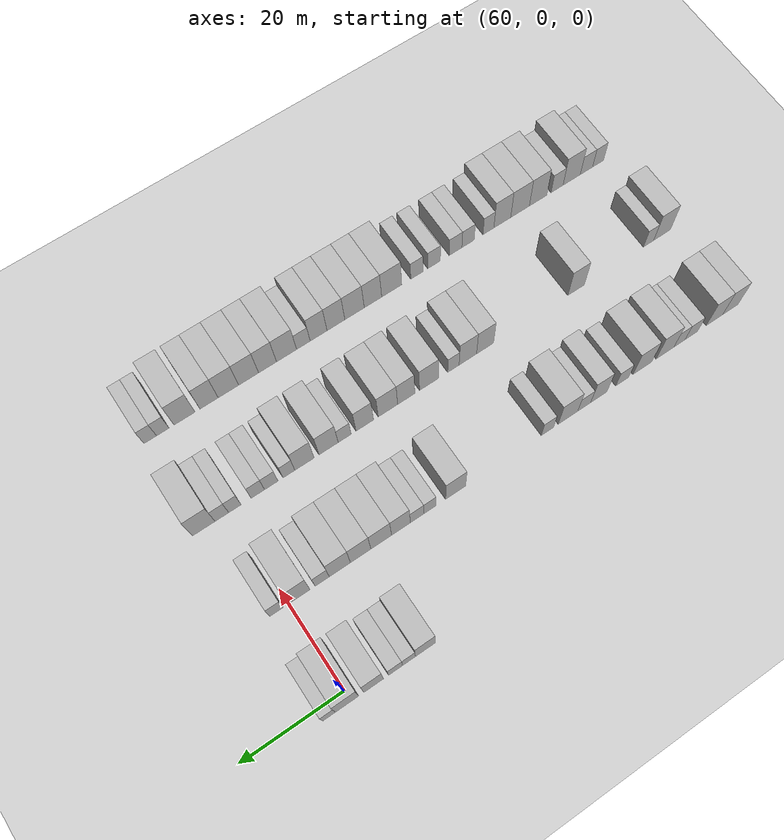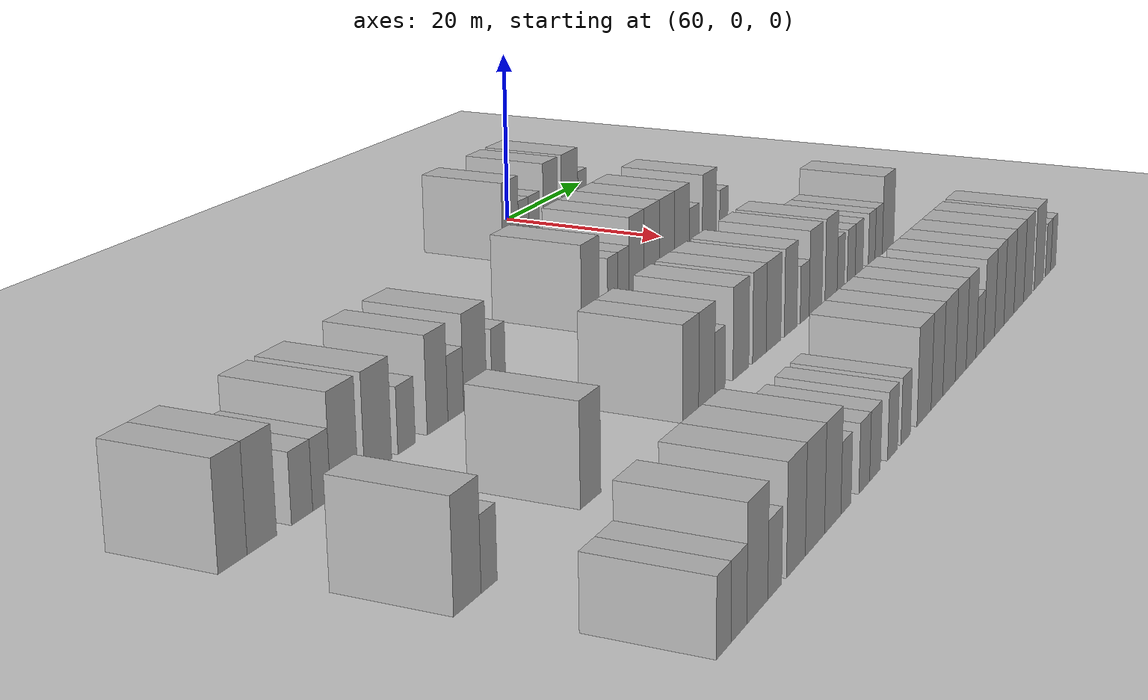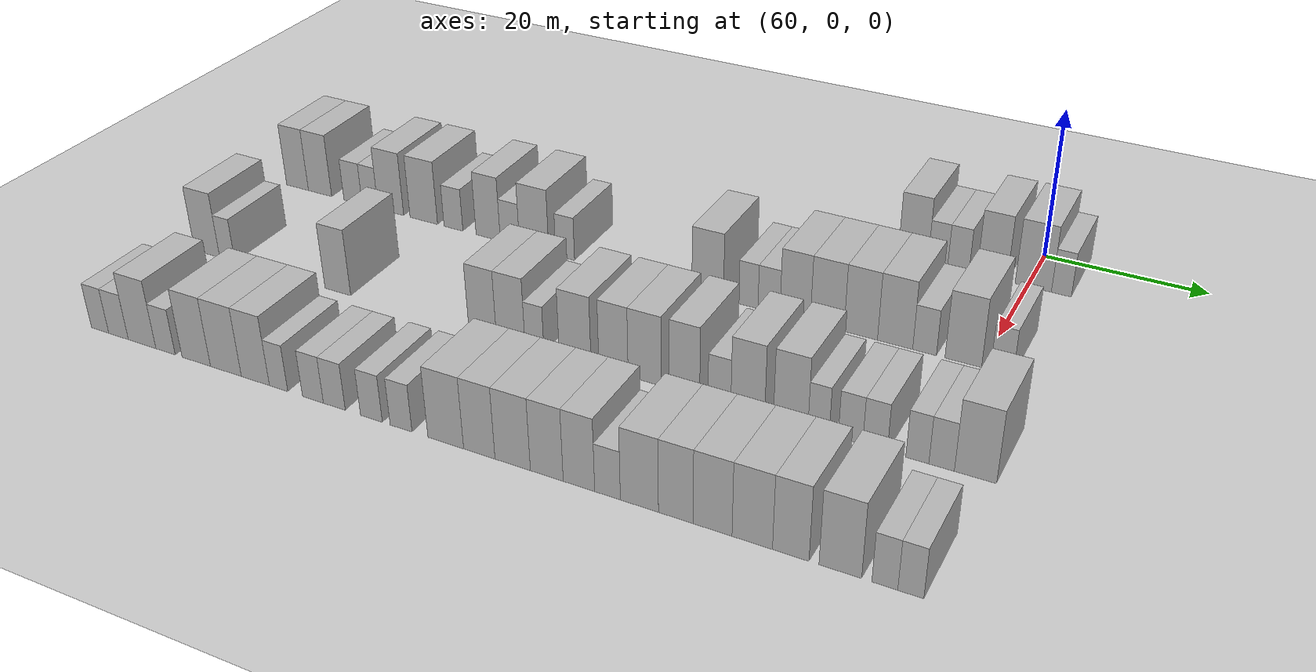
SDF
<sdf version="1.6">
 <world name="default">
  <include>
   <name>ground_plane_2</name>
   <uri>model://HANNAS_ground_plane</uri>
   <pose>100 0 0  0 0 0</pose>
  </include>
  <model name="building_426">
   <static>1</static>
   <pose>63.0000 -14.4906 0 0.000000 0.000000 0.000000</pose>
   <link name="link">
    <pose>0 0 4.50 0 0 0</pose>
    <collision name="collision"><geometry><box><size>10.0000 3.8891 9.0000</size></box></geometry></collision>
    <visual name="visual">
     <cast_shadows>0</cast_shadows>
     <geometry><box><size>10.0000 3.8891 9.0000</size></box></geometry>
     <material>
      <script>
       <uri>model://HANNAS_wall/materials/scripts</uri>
       <uri>model://HANNAS_wall/materials/textures</uri>
       <name>vrc/HANNAS_wall</name>
      </script>
     </material>
    </visual>
   </link>
  </model>
  <model name="building_427">
   <static>1</static>
   <pose>63.0000 -11.2849 0 0.000000 0.000000 0.000000</pose>
   <link name="link">
    <pose>0 0 3.00 0 0 0</pose>
    <collision name="collision"><geometry><box><size>10.0000 2.5223 6.0000</size></box></geometry></collision>
    <visual name="visual">
     <cast_shadows>0</cast_shadows>
     <geometry><box><size>10.0000 2.5223 6.0000</size></box></geometry>
     <material>
      <script>
       <uri>model://HANNAS_wall/materials/scripts</uri>
       <uri>model://HANNAS_wall/materials/textures</uri>
       <name>vrc/HANNAS_wall</name>
      </script>
     </material>
    </visual>
   </link>
  </model>
  <model name="building_428">
   <static>1</static>
   <pose>63.0000 -8.6567 0 0.000000 0.000000 0.000000</pose>
   <link name="link">
    <pose>0 0 3.00 0 0 0</pose>
    <collision name="collision"><geometry><box><size>10.0000 2.7342 6.0000</size></box></geometry></collision>
    <visual name="visual">
     <cast_shadows>0</cast_shadows>
     <geometry><box><size>10.0000 2.7342 6.0000</size></box></geometry>
     <material>
      <script>
       <uri>model://HANNAS_wall/materials/scripts</uri>
       <uri>model://HANNAS_wall/materials/textures</uri>
       <name>vrc/HANNAS_wall</name>
      </script>
     </material>
    </visual>
   </link>
  </model>
  <model name="building_429">
   <static>1</static>
   <pose>63.0000 -4.4032 0 0.000000 0.000000 0.000000</pose>
   <link name="link">
    <pose>0 0 4.50 0 0 0</pose>
    <collision name="collision"><geometry><box><size>10.0000 3.7728 9.0000</size></box></geometry></collision>
    <visual name="visual">
     <cast_shadows>0</cast_shadows>
     <geometry><box><size>10.0000 3.7728 9.0000</size></box></geometry>
     <material>
      <script>
       <uri>model://HANNAS_wall/materials/scripts</uri>
       <uri>model://HANNAS_wall/materials/textures</uri>
       <name>vrc/HANNAS_wall</name>
      </script>
     </material>
    </visual>
   </link>
  </model>
  <model name="building_430">
   <static>1</static>
   <pose>63.0000 0.7044 0 0.000000 0.000000 0.000000</pose>
   <link name="link">
    <pose>0 0 4.50 0 0 0</pose>
    <collision name="collision"><geometry><box><size>10.0000 4.4423 9.0000</size></box></geometry></collision>
    <visual name="visual">
     <cast_shadows>0</cast_shadows>
     <geometry><box><size>10.0000 4.4423 9.0000</size></box></geometry>
     <material>
      <script>
       <uri>model://HANNAS_wall/materials/scripts</uri>
       <uri>model://HANNAS_wall/materials/textures</uri>
       <name>vrc/HANNAS_wall</name>
      </script>
     </material>
    </visual>
   </link>
  </model>
  <model name="building_431">
   <static>1</static>
   <pose>63.0000 4.1381 0 0.000000 0.000000 0.000000</pose>
   <link name="link">
    <pose>0 0 3.00 0 0 0</pose>
    <collision name="collision"><geometry><box><size>10.0000 2.4251 6.0000</size></box></geometry></collision>
    <visual name="visual">
     <cast_shadows>0</cast_shadows>
     <geometry><box><size>10.0000 2.4251 6.0000</size></box></geometry>
     <material>
      <script>
       <uri>model://HANNAS_wall/materials/scripts</uri>
       <uri>model://HANNAS_wall/materials/textures</uri>
       <name>vrc/HANNAS_wall</name>
      </script>
     </material>
    </visual>
   </link>
  </model>
  <model name="building_577">
   <static>1</static>
   <pose>82.0000 -94.7768 0 0.000000 0.000000 0.000000</pose>
   <link name="link">
    <pose>0 0 4.50 0 0 0</pose>
    <collision name="collision"><geometry><box><size>10.0000 3.6217 9.0000</size></box></geometry></collision>
    <visual name="visual">
     <cast_shadows>0</cast_shadows>
     <geometry><box><size>10.0000 3.6217 9.0000</size></box></geometry>
     <material>
      <script>
       <uri>model://HANNAS_wall/materials/scripts</uri>
       <uri>model://HANNAS_wall/materials/textures</uri>
       <name>vrc/HANNAS_wall</name>
      </script>
     </material>
    </visual>
   </link>
  </model>
  <model name="building_578">
   <static>1</static>
   <pose>82.0000 -91.0421 0 0.000000 0.000000 0.000000</pose>
   <link name="link">
    <pose>0 0 4.50 0 0 0</pose>
    <collision name="collision"><geometry><box><size>10.0000 3.8477 9.0000</size></box></geometry></collision>
    <visual name="visual">
     <cast_shadows>0</cast_shadows>
     <geometry><box><size>10.0000 3.8477 9.0000</size></box></geometry>
     <material>
      <script>
       <uri>model://HANNAS_wall/materials/scripts</uri>
       <uri>model://HANNAS_wall/materials/textures</uri>
       <name>vrc/HANNAS_wall</name>
      </script>
     </material>
    </visual>
   </link>
  </model>
  <model name="building_579">
   <static>1</static>
   <pose>82.0000 -85.6497 0 0.000000 0.000000 0.000000</pose>
   <link name="link">
    <pose>0 0 3.00 0 0 0</pose>
    <collision name="collision"><geometry><box><size>10.0000 2.9372 6.0000</size></box></geometry></collision>
    <visual name="visual">
     <cast_shadows>0</cast_shadows>
     <geometry><box><size>10.0000 2.9372 6.0000</size></box></geometry>
     <material>
      <script>
       <uri>model://HANNAS_wall/materials/scripts</uri>
       <uri>model://HANNAS_wall/materials/textures</uri>
       <name>vrc/HANNAS_wall</name>
      </script>
     </material>
    </visual>
   </link>
  </model>
  <model name="building_580">
   <static>1</static>
   <pose>82.0000 -82.9049 0 0.000000 0.000000 0.000000</pose>
   <link name="link">
    <pose>0 0 3.00 0 0 0</pose>
    <collision name="collision"><geometry><box><size>10.0000 2.5524 6.0000</size></box></geometry></collision>
    <visual name="visual">
     <cast_shadows>0</cast_shadows>
     <geometry><box><size>10.0000 2.5524 6.0000</size></box></geometry>
     <material>
      <script>
       <uri>model://HANNAS_wall/materials/scripts</uri>
       <uri>model://HANNAS_wall/materials/textures</uri>
       <name>vrc/HANNAS_wall</name>
      </script>
     </material>
    </visual>
   </link>
  </model>
  <model name="building_581">
   <static>1</static>
   <pose>82.0000 -79.5986 0 0.000000 0.000000 0.000000</pose>
   <link name="link">
    <pose>0 0 4.50 0 0 0</pose>
    <collision name="collision"><geometry><box><size>10.0000 4.0602 9.0000</size></box></geometry></collision>
    <visual name="visual">
     <cast_shadows>0</cast_shadows>
     <geometry><box><size>10.0000 4.0602 9.0000</size></box></geometry>
     <material>
      <script>
       <uri>model://HANNAS_wall/materials/scripts</uri>
       <uri>model://HANNAS_wall/materials/textures</uri>
       <name>vrc/HANNAS_wall</name>
      </script>
     </material>
    </visual>
   </link>
  </model>
  <model name="building_582">
   <static>1</static>
   <pose>82.0000 -74.4341 0 0.000000 0.000000 0.000000</pose>
   <link name="link">
    <pose>0 0 4.50 0 0 0</pose>
    <collision name="collision"><geometry><box><size>10.0000 4.2687 9.0000</size></box></geometry></collision>
    <visual name="visual">
     <cast_shadows>0</cast_shadows>
     <geometry><box><size>10.0000 4.2687 9.0000</size></box></geometry>
     <material>
      <script>
       <uri>model://HANNAS_wall/materials/scripts</uri>
       <uri>model://HANNAS_wall/materials/textures</uri>
       <name>vrc/HANNAS_wall</name>
      </script>
     </material>
    </visual>
   </link>
  </model>
  <model name="building_583">
   <static>1</static>
   <pose>82.0000 -69.8637 0 0.000000 0.000000 0.000000</pose>
   <link name="link">
    <pose>0 0 3.00 0 0 0</pose>
    <collision name="collision"><geometry><box><size>10.0000 2.8721 6.0000</size></box></geometry></collision>
    <visual name="visual">
     <cast_shadows>0</cast_shadows>
     <geometry><box><size>10.0000 2.8721 6.0000</size></box></geometry>
     <material>
      <script>
       <uri>model://HANNAS_wall/materials/scripts</uri>
       <uri>model://HANNAS_wall/materials/textures</uri>
       <name>vrc/HANNAS_wall</name>
      </script>
     </material>
    </visual>
   </link>
  </model>
  <model name="building_584">
   <static>1</static>
   <pose>82.0000 -64.6179 0 0.000000 0.000000 0.000000</pose>
   <link name="link">
    <pose>0 0 4.50 0 0 0</pose>
    <collision name="collision"><geometry><box><size>10.0000 3.6196 9.0000</size></box></geometry></collision>
    <visual name="visual">
     <cast_shadows>0</cast_shadows>
     <geometry><box><size>10.0000 3.6196 9.0000</size></box></geometry>
     <material>
      <script>
       <uri>model://HANNAS_wall/materials/scripts</uri>
       <uri>model://HANNAS_wall/materials/textures</uri>
       <name>vrc/HANNAS_wall</name>
      </script>
     </material>
    </visual>
   </link>
  </model>
  <model name="building_585">
   <static>1</static>
   <pose>82.0000 -61.3873 0 0.000000 0.000000 0.000000</pose>
   <link name="link">
    <pose>0 0 3.00 0 0 0</pose>
    <collision name="collision"><geometry><box><size>10.0000 2.8418 6.0000</size></box></geometry></collision>
    <visual name="visual">
     <cast_shadows>0</cast_shadows>
     <geometry><box><size>10.0000 2.8418 6.0000</size></box></geometry>
     <material>
      <script>
       <uri>model://HANNAS_wall/materials/scripts</uri>
       <uri>model://HANNAS_wall/materials/textures</uri>
       <name>vrc/HANNAS_wall</name>
      </script>
     </material>
    </visual>
   </link>
  </model>
  <model name="building_586">
   <static>1</static>
   <pose>82.0000 -57.8282 0 0.000000 0.000000 0.000000</pose>
   <link name="link">
    <pose>0 0 4.50 0 0 0</pose>
    <collision name="collision"><geometry><box><size>10.0000 4.2763 9.0000</size></box></geometry></collision>
    <visual name="visual">
     <cast_shadows>0</cast_shadows>
     <geometry><box><size>10.0000 4.2763 9.0000</size></box></geometry>
     <material>
      <script>
       <uri>model://HANNAS_wall/materials/scripts</uri>
       <uri>model://HANNAS_wall/materials/textures</uri>
       <name>vrc/HANNAS_wall</name>
      </script>
     </material>
    </visual>
   </link>
  </model>
  <model name="building_587">
   <static>1</static>
   <pose>82.0000 -53.3490 0 0.000000 0.000000 0.000000</pose>
   <link name="link">
    <pose>0 0 3.00 0 0 0</pose>
    <collision name="collision"><geometry><box><size>10.0000 2.6821 6.0000</size></box></geometry></collision>
    <visual name="visual">
     <cast_shadows>0</cast_shadows>
     <geometry><box><size>10.0000 2.6821 6.0000</size></box></geometry>
     <material>
      <script>
       <uri>model://HANNAS_wall/materials/scripts</uri>
       <uri>model://HANNAS_wall/materials/textures</uri>
       <name>vrc/HANNAS_wall</name>
      </script>
     </material>
    </visual>
   </link>
  </model>
  <model name="building_588">
   <static>1</static>
   <pose>82.0000 -33.7430 0 0.000000 0.000000 0.000000</pose>
   <link name="link">
    <pose>0 0 4.50 0 0 0</pose>
    <collision name="collision"><geometry><box><size>10.0000 4.1766 9.0000</size></box></geometry></collision>
    <visual name="visual">
     <cast_shadows>0</cast_shadows>
     <geometry><box><size>10.0000 4.1766 9.0000</size></box></geometry>
     <material>
      <script>
       <uri>model://HANNAS_wall/materials/scripts</uri>
       <uri>model://HANNAS_wall/materials/textures</uri>
       <name>vrc/HANNAS_wall</name>
      </script>
     </material>
    </visual>
   </link>
  </model>
  <model name="building_589">
   <static>1</static>
   <pose>82.0000 -28.4143 0 0.000000 0.000000 0.000000</pose>
   <link name="link">
    <pose>0 0 3.00 0 0 0</pose>
    <collision name="collision"><geometry><box><size>10.0000 2.4808 6.0000</size></box></geometry></collision>
    <visual name="visual">
     <cast_shadows>0</cast_shadows>
     <geometry><box><size>10.0000 2.4808 6.0000</size></box></geometry>
     <material>
      <script>
       <uri>model://HANNAS_wall/materials/scripts</uri>
       <uri>model://HANNAS_wall/materials/textures</uri>
       <name>vrc/HANNAS_wall</name>
      </script>
     </material>
    </visual>
   </link>
  </model>
  <model name="building_590">
   <static>1</static>
   <pose>82.0000 -25.7703 0 0.000000 0.000000 0.000000</pose>
   <link name="link">
    <pose>0 0 3.00 0 0 0</pose>
    <collision name="collision"><geometry><box><size>10.0000 2.8072 6.0000</size></box></geometry></collision>
    <visual name="visual">
     <cast_shadows>0</cast_shadows>
     <geometry><box><size>10.0000 2.8072 6.0000</size></box></geometry>
     <material>
      <script>
       <uri>model://HANNAS_wall/materials/scripts</uri>
       <uri>model://HANNAS_wall/materials/textures</uri>
       <name>vrc/HANNAS_wall</name>
      </script>
     </material>
    </visual>
   </link>
  </model>
  <model name="building_591">
   <static>1</static>
   <pose>82.0000 -22.4436 0 0.000000 0.000000 0.000000</pose>
   <link name="link">
    <pose>0 0 4.50 0 0 0</pose>
    <collision name="collision"><geometry><box><size>10.0000 3.8463 9.0000</size></box></geometry></collision>
    <visual name="visual">
     <cast_shadows>0</cast_shadows>
     <geometry><box><size>10.0000 3.8463 9.0000</size></box></geometry>
     <material>
      <script>
       <uri>model://HANNAS_wall/materials/scripts</uri>
       <uri>model://HANNAS_wall/materials/textures</uri>
       <name>vrc/HANNAS_wall</name>
      </script>
     </material>
    </visual>
   </link>
  </model>
  <model name="building_592">
   <static>1</static>
   <pose>82.0000 -18.4230 0 0.000000 0.000000 0.000000</pose>
   <link name="link">
    <pose>0 0 4.50 0 0 0</pose>
    <collision name="collision"><geometry><box><size>10.0000 4.1948 9.0000</size></box></geometry></collision>
    <visual name="visual">
     <cast_shadows>0</cast_shadows>
     <geometry><box><size>10.0000 4.1948 9.0000</size></box></geometry>
     <material>
      <script>
       <uri>model://HANNAS_wall/materials/scripts</uri>
       <uri>model://HANNAS_wall/materials/textures</uri>
       <name>vrc/HANNAS_wall</name>
      </script>
     </material>
    </visual>
   </link>
  </model>
  <model name="building_593">
   <static>1</static>
   <pose>82.0000 -14.2781 0 0.000000 0.000000 0.000000</pose>
   <link name="link">
    <pose>0 0 4.50 0 0 0</pose>
    <collision name="collision"><geometry><box><size>10.0000 4.0950 9.0000</size></box></geometry></collision>
    <visual name="visual">
     <cast_shadows>0</cast_shadows>
     <geometry><box><size>10.0000 4.0950 9.0000</size></box></geometry>
     <material>
      <script>
       <uri>model://HANNAS_wall/materials/scripts</uri>
       <uri>model://HANNAS_wall/materials/textures</uri>
       <name>vrc/HANNAS_wall</name>
      </script>
     </material>
    </visual>
   </link>
  </model>
  <model name="building_594">
   <static>1</static>
   <pose>82.0000 -10.1192 0 0.000000 0.000000 0.000000</pose>
   <link name="link">
    <pose>0 0 4.50 0 0 0</pose>
    <collision name="collision"><geometry><box><size>10.0000 4.2227 9.0000</size></box></geometry></collision>
    <visual name="visual">
     <cast_shadows>0</cast_shadows>
     <geometry><box><size>10.0000 4.2227 9.0000</size></box></geometry>
     <material>
      <script>
       <uri>model://HANNAS_wall/materials/scripts</uri>
       <uri>model://HANNAS_wall/materials/textures</uri>
       <name>vrc/HANNAS_wall</name>
      </script>
     </material>
    </visual>
   </link>
  </model>
  <model name="building_595">
   <static>1</static>
   <pose>82.0000 -6.6034 0 0.000000 0.000000 0.000000</pose>
   <link name="link">
    <pose>0 0 3.00 0 0 0</pose>
    <collision name="collision"><geometry><box><size>10.0000 2.8090 6.0000</size></box></geometry></collision>
    <visual name="visual">
     <cast_shadows>0</cast_shadows>
     <geometry><box><size>10.0000 2.8090 6.0000</size></box></geometry>
     <material>
      <script>
       <uri>model://HANNAS_wall/materials/scripts</uri>
       <uri>model://HANNAS_wall/materials/textures</uri>
       <name>vrc/HANNAS_wall</name>
      </script>
     </material>
    </visual>
   </link>
  </model>
  <model name="building_596">
   <static>1</static>
   <pose>82.0000 -2.0756 0 0.000000 0.000000 0.000000</pose>
   <link name="link">
    <pose>0 0 4.50 0 0 0</pose>
    <collision name="collision"><geometry><box><size>10.0000 4.2466 9.0000</size></box></geometry></collision>
    <visual name="visual">
     <cast_shadows>0</cast_shadows>
     <geometry><box><size>10.0000 4.2466 9.0000</size></box></geometry>
     <material>
      <script>
       <uri>model://HANNAS_wall/materials/scripts</uri>
       <uri>model://HANNAS_wall/materials/textures</uri>
       <name>vrc/HANNAS_wall</name>
      </script>
     </material>
    </visual>
   </link>
  </model>
  <model name="building_597">
   <static>1</static>
   <pose>82.0000 2.3453 0 0.000000 0.000000 0.000000</pose>
   <link name="link">
    <pose>0 0 3.00 0 0 0</pose>
    <collision name="collision"><geometry><box><size>10.0000 2.5951 6.0000</size></box></geometry></collision>
    <visual name="visual">
     <cast_shadows>0</cast_shadows>
     <geometry><box><size>10.0000 2.5951 6.0000</size></box></geometry>
     <material>
      <script>
       <uri>model://HANNAS_wall/materials/scripts</uri>
       <uri>model://HANNAS_wall/materials/textures</uri>
       <name>vrc/HANNAS_wall</name>
      </script>
     </material>
    </visual>
   </link>
  </model>
  <model name="building_733">
   <static>1</static>
   <pose>101.0000 -93.9595 0 0.000000 0.000000 0.000000</pose>
   <link name="link">
    <pose>0 0 4.50 0 0 0</pose>
    <collision name="collision"><geometry><box><size>10.0000 3.9948 9.0000</size></box></geometry></collision>
    <visual name="visual">
     <cast_shadows>0</cast_shadows>
     <geometry><box><size>10.0000 3.9948 9.0000</size></box></geometry>
     <material>
      <script>
       <uri>model://HANNAS_wall/materials/scripts</uri>
       <uri>model://HANNAS_wall/materials/textures</uri>
       <name>vrc/HANNAS_wall</name>
      </script>
     </material>
    </visual>
   </link>
  </model>
  <model name="building_734">
   <static>1</static>
   <pose>101.0000 -90.7580 0 0.000000 0.000000 0.000000</pose>
   <link name="link">
    <pose>0 0 3.00 0 0 0</pose>
    <collision name="collision"><geometry><box><size>10.0000 2.4082 6.0000</size></box></geometry></collision>
    <visual name="visual">
     <cast_shadows>0</cast_shadows>
     <geometry><box><size>10.0000 2.4082 6.0000</size></box></geometry>
     <material>
      <script>
       <uri>model://HANNAS_wall/materials/scripts</uri>
       <uri>model://HANNAS_wall/materials/textures</uri>
       <name>vrc/HANNAS_wall</name>
      </script>
     </material>
    </visual>
   </link>
  </model>
  <model name="building_735">
   <static>1</static>
   <pose>101.0000 -73.8840 0 0.000000 0.000000 0.000000</pose>
   <link name="link">
    <pose>0 0 4.50 0 0 0</pose>
    <collision name="collision"><geometry><box><size>10.0000 3.7799 9.0000</size></box></geometry></collision>
    <visual name="visual">
     <cast_shadows>0</cast_shadows>
     <geometry><box><size>10.0000 3.7799 9.0000</size></box></geometry>
     <material>
      <script>
       <uri>model://HANNAS_wall/materials/scripts</uri>
       <uri>model://HANNAS_wall/materials/textures</uri>
       <name>vrc/HANNAS_wall</name>
      </script>
     </material>
    </visual>
   </link>
  </model>
  <model name="building_736">
   <static>1</static>
   <pose>101.0000 -53.3920 0 0.000000 0.000000 0.000000</pose>
   <link name="link">
    <pose>0 0 4.50 0 0 0</pose>
    <collision name="collision"><geometry><box><size>10.0000 3.7347 9.0000</size></box></geometry></collision>
    <visual name="visual">
     <cast_shadows>0</cast_shadows>
     <geometry><box><size>10.0000 3.7347 9.0000</size></box></geometry>
     <material>
      <script>
       <uri>model://HANNAS_wall/materials/scripts</uri>
       <uri>model://HANNAS_wall/materials/textures</uri>
       <name>vrc/HANNAS_wall</name>
      </script>
     </material>
    </visual>
   </link>
  </model>
  <model name="building_737">
   <static>1</static>
   <pose>101.0000 -49.6116 0 0.000000 0.000000 0.000000</pose>
   <link name="link">
    <pose>0 0 4.50 0 0 0</pose>
    <collision name="collision"><geometry><box><size>10.0000 3.8261 9.0000</size></box></geometry></collision>
    <visual name="visual">
     <cast_shadows>0</cast_shadows>
     <geometry><box><size>10.0000 3.8261 9.0000</size></box></geometry>
     <material>
      <script>
       <uri>model://HANNAS_wall/materials/scripts</uri>
       <uri>model://HANNAS_wall/materials/textures</uri>
       <name>vrc/HANNAS_wall</name>
      </script>
     </material>
    </visual>
   </link>
  </model>
  <model name="building_738">
   <static>1</static>
   <pose>101.0000 -46.4598 0 0.000000 0.000000 0.000000</pose>
   <link name="link">
    <pose>0 0 3.00 0 0 0</pose>
    <collision name="collision"><geometry><box><size>10.0000 2.4775 6.0000</size></box></geometry></collision>
    <visual name="visual">
     <cast_shadows>0</cast_shadows>
     <geometry><box><size>10.0000 2.4775 6.0000</size></box></geometry>
     <material>
      <script>
       <uri>model://HANNAS_wall/materials/scripts</uri>
       <uri>model://HANNAS_wall/materials/textures</uri>
       <name>vrc/HANNAS_wall</name>
      </script>
     </material>
    </visual>
   </link>
  </model>
  <model name="building_739">
   <static>1</static>
   <pose>101.0000 -41.1780 0 0.000000 0.000000 0.000000</pose>
   <link name="link">
    <pose>0 0 4.50 0 0 0</pose>
    <collision name="collision"><geometry><box><size>10.0000 4.0862 9.0000</size></box></geometry></collision>
    <visual name="visual">
     <cast_shadows>0</cast_shadows>
     <geometry><box><size>10.0000 4.0862 9.0000</size></box></geometry>
     <material>
      <script>
       <uri>model://HANNAS_wall/materials/scripts</uri>
       <uri>model://HANNAS_wall/materials/textures</uri>
       <name>vrc/HANNAS_wall</name>
      </script>
     </material>
    </visual>
   </link>
  </model>
  <model name="building_740">
   <static>1</static>
   <pose>101.0000 -36.2970 0 0.000000 0.000000 0.000000</pose>
   <link name="link">
    <pose>0 0 4.50 0 0 0</pose>
    <collision name="collision"><geometry><box><size>10.0000 3.6758 9.0000</size></box></geometry></collision>
    <visual name="visual">
     <cast_shadows>0</cast_shadows>
     <geometry><box><size>10.0000 3.6758 9.0000</size></box></geometry>
     <material>
      <script>
       <uri>model://HANNAS_wall/materials/scripts</uri>
       <uri>model://HANNAS_wall/materials/textures</uri>
       <name>vrc/HANNAS_wall</name>
      </script>
     </material>
    </visual>
   </link>
  </model>
  <model name="building_741">
   <static>1</static>
   <pose>101.0000 -32.4134 0 0.000000 0.000000 0.000000</pose>
   <link name="link">
    <pose>0 0 4.50 0 0 0</pose>
    <collision name="collision"><geometry><box><size>10.0000 4.0914 9.0000</size></box></geometry></collision>
    <visual name="visual">
     <cast_shadows>0</cast_shadows>
     <geometry><box><size>10.0000 4.0914 9.0000</size></box></geometry>
     <material>
      <script>
       <uri>model://HANNAS_wall/materials/scripts</uri>
       <uri>model://HANNAS_wall/materials/textures</uri>
       <name>vrc/HANNAS_wall</name>
      </script>
     </material>
    </visual>
   </link>
  </model>
  <model name="building_742">
   <static>1</static>
   <pose>101.0000 -27.5302 0 0.000000 0.000000 0.000000</pose>
   <link name="link">
    <pose>0 0 4.50 0 0 0</pose>
    <collision name="collision"><geometry><box><size>10.0000 3.6751 9.0000</size></box></geometry></collision>
    <visual name="visual">
     <cast_shadows>0</cast_shadows>
     <geometry><box><size>10.0000 3.6751 9.0000</size></box></geometry>
     <material>
      <script>
       <uri>model://HANNAS_wall/materials/scripts</uri>
       <uri>model://HANNAS_wall/materials/textures</uri>
       <name>vrc/HANNAS_wall</name>
      </script>
     </material>
    </visual>
   </link>
  </model>
  <model name="building_743">
   <static>1</static>
   <pose>101.0000 -23.3384 0 0.000000 0.000000 0.000000</pose>
   <link name="link">
    <pose>0 0 3.00 0 0 0</pose>
    <collision name="collision"><geometry><box><size>10.0000 2.7087 6.0000</size></box></geometry></collision>
    <visual name="visual">
     <cast_shadows>0</cast_shadows>
     <geometry><box><size>10.0000 2.7087 6.0000</size></box></geometry>
     <material>
      <script>
       <uri>model://HANNAS_wall/materials/scripts</uri>
       <uri>model://HANNAS_wall/materials/textures</uri>
       <name>vrc/HANNAS_wall</name>
      </script>
     </material>
    </visual>
   </link>
  </model>
  <model name="building_744">
   <static>1</static>
   <pose>101.0000 -19.9992 0 0.000000 0.000000 0.000000</pose>
   <link name="link">
    <pose>0 0 4.50 0 0 0</pose>
    <collision name="collision"><geometry><box><size>10.0000 3.9698 9.0000</size></box></geometry></collision>
    <visual name="visual">
     <cast_shadows>0</cast_shadows>
     <geometry><box><size>10.0000 3.9698 9.0000</size></box></geometry>
     <material>
      <script>
       <uri>model://HANNAS_wall/materials/scripts</uri>
       <uri>model://HANNAS_wall/materials/textures</uri>
       <name>vrc/HANNAS_wall</name>
      </script>
     </material>
    </visual>
   </link>
  </model>
  <model name="building_745">
   <static>1</static>
   <pose>101.0000 -15.0355 0 0.000000 0.000000 0.000000</pose>
   <link name="link">
    <pose>0 0 4.50 0 0 0</pose>
    <collision name="collision"><geometry><box><size>10.0000 3.9576 9.0000</size></box></geometry></collision>
    <visual name="visual">
     <cast_shadows>0</cast_shadows>
     <geometry><box><size>10.0000 3.9576 9.0000</size></box></geometry>
     <material>
      <script>
       <uri>model://HANNAS_wall/materials/scripts</uri>
       <uri>model://HANNAS_wall/materials/textures</uri>
       <name>vrc/HANNAS_wall</name>
      </script>
     </material>
    </visual>
   </link>
  </model>
  <model name="building_746">
   <static>1</static>
   <pose>101.0000 -11.8532 0 0.000000 0.000000 0.000000</pose>
   <link name="link">
    <pose>0 0 3.00 0 0 0</pose>
    <collision name="collision"><geometry><box><size>10.0000 2.4070 6.0000</size></box></geometry></collision>
    <visual name="visual">
     <cast_shadows>0</cast_shadows>
     <geometry><box><size>10.0000 2.4070 6.0000</size></box></geometry>
     <material>
      <script>
       <uri>model://HANNAS_wall/materials/scripts</uri>
       <uri>model://HANNAS_wall/materials/textures</uri>
       <name>vrc/HANNAS_wall</name>
      </script>
     </material>
    </visual>
   </link>
  </model>
  <model name="building_747">
   <static>1</static>
   <pose>101.0000 -8.2887 0 0.000000 0.000000 0.000000</pose>
   <link name="link">
    <pose>0 0 3.00 0 0 0</pose>
    <collision name="collision"><geometry><box><size>10.0000 2.7219 6.0000</size></box></geometry></collision>
    <visual name="visual">
     <cast_shadows>0</cast_shadows>
     <geometry><box><size>10.0000 2.7219 6.0000</size></box></geometry>
     <material>
      <script>
       <uri>model://HANNAS_wall/materials/scripts</uri>
       <uri>model://HANNAS_wall/materials/textures</uri>
       <name>vrc/HANNAS_wall</name>
      </script>
     </material>
    </visual>
   </link>
  </model>
  <model name="building_748">
   <static>1</static>
   <pose>101.0000 -5.5770 0 0.000000 0.000000 0.000000</pose>
   <link name="link">
    <pose>0 0 3.00 0 0 0</pose>
    <collision name="collision"><geometry><box><size>10.0000 2.7016 6.0000</size></box></geometry></collision>
    <visual name="visual">
     <cast_shadows>0</cast_shadows>
     <geometry><box><size>10.0000 2.7016 6.0000</size></box></geometry>
     <material>
      <script>
       <uri>model://HANNAS_wall/materials/scripts</uri>
       <uri>model://HANNAS_wall/materials/textures</uri>
       <name>vrc/HANNAS_wall</name>
      </script>
     </material>
    </visual>
   </link>
  </model>
  <model name="building_749">
   <static>1</static>
   <pose>101.0000 -0.9923 0 0.000000 0.000000 0.000000</pose>
   <link name="link">
    <pose>0 0 3.00 0 0 0</pose>
    <collision name="collision"><geometry><box><size>10.0000 2.4677 6.0000</size></box></geometry></collision>
    <visual name="visual">
     <cast_shadows>0</cast_shadows>
     <geometry><box><size>10.0000 2.4677 6.0000</size></box></geometry>
     <material>
      <script>
       <uri>model://HANNAS_wall/materials/scripts</uri>
       <uri>model://HANNAS_wall/materials/textures</uri>
       <name>vrc/HANNAS_wall</name>
      </script>
     </material>
    </visual>
   </link>
  </model>
  <model name="building_750">
   <static>1</static>
   <pose>101.0000 1.5946 0 0.000000 0.000000 0.000000</pose>
   <link name="link">
    <pose>0 0 3.00 0 0 0</pose>
    <collision name="collision"><geometry><box><size>10.0000 2.7060 6.0000</size></box></geometry></collision>
    <visual name="visual">
     <cast_shadows>0</cast_shadows>
     <geometry><box><size>10.0000 2.7060 6.0000</size></box></geometry>
     <material>
      <script>
       <uri>model://HANNAS_wall/materials/scripts</uri>
       <uri>model://HANNAS_wall/materials/textures</uri>
       <name>vrc/HANNAS_wall</name>
      </script>
     </material>
    </visual>
   </link>
  </model>
  <model name="building_751">
   <static>1</static>
   <pose>101.0000 5.1518 0 0.000000 0.000000 0.000000</pose>
   <link name="link">
    <pose>0 0 4.50 0 0 0</pose>
    <collision name="collision"><geometry><box><size>10.0000 4.4084 9.0000</size></box></geometry></collision>
    <visual name="visual">
     <cast_shadows>0</cast_shadows>
     <geometry><box><size>10.0000 4.4084 9.0000</size></box></geometry>
     <material>
      <script>
       <uri>model://HANNAS_wall/materials/scripts</uri>
       <uri>model://HANNAS_wall/materials/textures</uri>
       <name>vrc/HANNAS_wall</name>
      </script>
     </material>
    </visual>
   </link>
  </model>
  <model name="building_905">
   <static>1</static>
   <pose>120.0000 -93.4057 0 0.000000 0.000000 0.000000</pose>
   <link name="link">
    <pose>0 0 3.00 0 0 0</pose>
    <collision name="collision"><geometry><box><size>10.0000 2.6341 6.0000</size></box></geometry></collision>
    <visual name="visual">
     <cast_shadows>0</cast_shadows>
     <geometry><box><size>10.0000 2.6341 6.0000</size></box></geometry>
     <material>
      <script>
       <uri>model://HANNAS_wall/materials/scripts</uri>
       <uri>model://HANNAS_wall/materials/textures</uri>
       <name>vrc/HANNAS_wall</name>
      </script>
     </material>
    </visual>
   </link>
  </model>
  <model name="building_906">
   <static>1</static>
   <pose>120.0000 -90.6102 0 0.000000 0.000000 0.000000</pose>
   <link name="link">
    <pose>0 0 3.00 0 0 0</pose>
    <collision name="collision"><geometry><box><size>10.0000 2.9570 6.0000</size></box></geometry></collision>
    <visual name="visual">
     <cast_shadows>0</cast_shadows>
     <geometry><box><size>10.0000 2.9570 6.0000</size></box></geometry>
     <material>
      <script>
       <uri>model://HANNAS_wall/materials/scripts</uri>
       <uri>model://HANNAS_wall/materials/textures</uri>
       <name>vrc/HANNAS_wall</name>
      </script>
     </material>
    </visual>
   </link>
  </model>
  <model name="building_907">
   <static>1</static>
   <pose>120.0000 -87.0816 0 0.000000 0.000000 0.000000</pose>
   <link name="link">
    <pose>0 0 4.50 0 0 0</pose>
    <collision name="collision"><geometry><box><size>10.0000 4.1001 9.0000</size></box></geometry></collision>
    <visual name="visual">
     <cast_shadows>0</cast_shadows>
     <geometry><box><size>10.0000 4.1001 9.0000</size></box></geometry>
     <material>
      <script>
       <uri>model://HANNAS_wall/materials/scripts</uri>
       <uri>model://HANNAS_wall/materials/textures</uri>
       <name>vrc/HANNAS_wall</name>
      </script>
     </material>
    </visual>
   </link>
  </model>
  <model name="building_908">
   <static>1</static>
   <pose>120.0000 -83.6164 0 0.000000 0.000000 0.000000</pose>
   <link name="link">
    <pose>0 0 3.00 0 0 0</pose>
    <collision name="collision"><geometry><box><size>10.0000 2.8303 6.0000</size></box></geometry></collision>
    <visual name="visual">
     <cast_shadows>0</cast_shadows>
     <geometry><box><size>10.0000 2.8303 6.0000</size></box></geometry>
     <material>
      <script>
       <uri>model://HANNAS_wall/materials/scripts</uri>
       <uri>model://HANNAS_wall/materials/textures</uri>
       <name>vrc/HANNAS_wall</name>
      </script>
     </material>
    </visual>
   </link>
  </model>
  <model name="building_909">
   <static>1</static>
   <pose>120.0000 -79.1588 0 0.000000 0.000000 0.000000</pose>
   <link name="link">
    <pose>0 0 4.50 0 0 0</pose>
    <collision name="collision"><geometry><box><size>10.0000 4.0848 9.0000</size></box></geometry></collision>
    <visual name="visual">
     <cast_shadows>0</cast_shadows>
     <geometry><box><size>10.0000 4.0848 9.0000</size></box></geometry>
     <material>
      <script>
       <uri>model://HANNAS_wall/materials/scripts</uri>
       <uri>model://HANNAS_wall/materials/textures</uri>
       <name>vrc/HANNAS_wall</name>
      </script>
     </material>
    </visual>
   </link>
  </model>
  <model name="building_910">
   <static>1</static>
   <pose>120.0000 -74.9355 0 0.000000 0.000000 0.000000</pose>
   <link name="link">
    <pose>0 0 4.50 0 0 0</pose>
    <collision name="collision"><geometry><box><size>10.0000 4.3617 9.0000</size></box></geometry></collision>
    <visual name="visual">
     <cast_shadows>0</cast_shadows>
     <geometry><box><size>10.0000 4.3617 9.0000</size></box></geometry>
     <material>
      <script>
       <uri>model://HANNAS_wall/materials/scripts</uri>
       <uri>model://HANNAS_wall/materials/textures</uri>
       <name>vrc/HANNAS_wall</name>
      </script>
     </material>
    </visual>
   </link>
  </model>
  <model name="building_911">
   <static>1</static>
   <pose>120.0000 -70.8095 0 0.000000 0.000000 0.000000</pose>
   <link name="link">
    <pose>0 0 4.50 0 0 0</pose>
    <collision name="collision"><geometry><box><size>10.0000 3.8904 9.0000</size></box></geometry></collision>
    <visual name="visual">
     <cast_shadows>0</cast_shadows>
     <geometry><box><size>10.0000 3.8904 9.0000</size></box></geometry>
     <material>
      <script>
       <uri>model://HANNAS_wall/materials/scripts</uri>
       <uri>model://HANNAS_wall/materials/textures</uri>
       <name>vrc/HANNAS_wall</name>
      </script>
     </material>
    </visual>
   </link>
  </model>
  <model name="building_912">
   <static>1</static>
   <pose>120.0000 -67.6107 0 0.000000 0.000000 0.000000</pose>
   <link name="link">
    <pose>0 0 3.00 0 0 0</pose>
    <collision name="collision"><geometry><box><size>10.0000 2.5073 6.0000</size></box></geometry></collision>
    <visual name="visual">
     <cast_shadows>0</cast_shadows>
     <geometry><box><size>10.0000 2.5073 6.0000</size></box></geometry>
     <material>
      <script>
       <uri>model://HANNAS_wall/materials/scripts</uri>
       <uri>model://HANNAS_wall/materials/textures</uri>
       <name>vrc/HANNAS_wall</name>
      </script>
     </material>
    </visual>
   </link>
  </model>
  <model name="building_913">
   <static>1</static>
   <pose>120.0000 -62.9584 0 0.000000 0.000000 0.000000</pose>
   <link name="link">
    <pose>0 0 3.00 0 0 0</pose>
    <collision name="collision"><geometry><box><size>10.0000 2.7972 6.0000</size></box></geometry></collision>
    <visual name="visual">
     <cast_shadows>0</cast_shadows>
     <geometry><box><size>10.0000 2.7972 6.0000</size></box></geometry>
     <material>
      <script>
       <uri>model://HANNAS_wall/materials/scripts</uri>
       <uri>model://HANNAS_wall/materials/textures</uri>
       <name>vrc/HANNAS_wall</name>
      </script>
     </material>
    </visual>
   </link>
  </model>
  <model name="building_914">
   <static>1</static>
   <pose>120.0000 -60.1173 0 0.000000 0.000000 0.000000</pose>
   <link name="link">
    <pose>0 0 3.00 0 0 0</pose>
    <collision name="collision"><geometry><box><size>10.0000 2.8849 6.0000</size></box></geometry></collision>
    <visual name="visual">
     <cast_shadows>0</cast_shadows>
     <geometry><box><size>10.0000 2.8849 6.0000</size></box></geometry>
     <material>
      <script>
       <uri>model://HANNAS_wall/materials/scripts</uri>
       <uri>model://HANNAS_wall/materials/textures</uri>
       <name>vrc/HANNAS_wall</name>
      </script>
     </material>
    </visual>
   </link>
  </model>
  <model name="building_915">
   <static>1</static>
   <pose>120.0000 -55.2664 0 0.000000 0.000000 0.000000</pose>
   <link name="link">
    <pose>0 0 3.00 0 0 0</pose>
    <collision name="collision"><geometry><box><size>10.0000 2.8170 6.0000</size></box></geometry></collision>
    <visual name="visual">
     <cast_shadows>0</cast_shadows>
     <geometry><box><size>10.0000 2.8170 6.0000</size></box></geometry>
     <material>
      <script>
       <uri>model://HANNAS_wall/materials/scripts</uri>
       <uri>model://HANNAS_wall/materials/textures</uri>
       <name>vrc/HANNAS_wall</name>
      </script>
     </material>
    </visual>
   </link>
  </model>
  <model name="building_916">
   <static>1</static>
   <pose>120.0000 -51.4693 0 0.000000 0.000000 0.000000</pose>
   <link name="link">
    <pose>0 0 3.00 0 0 0</pose>
    <collision name="collision"><geometry><box><size>10.0000 2.7772 6.0000</size></box></geometry></collision>
    <visual name="visual">
     <cast_shadows>0</cast_shadows>
     <geometry><box><size>10.0000 2.7772 6.0000</size></box></geometry>
     <material>
      <script>
       <uri>model://HANNAS_wall/materials/scripts</uri>
       <uri>model://HANNAS_wall/materials/textures</uri>
       <name>vrc/HANNAS_wall</name>
      </script>
     </material>
    </visual>
   </link>
  </model>
  <model name="building_917">
   <static>1</static>
   <pose>120.0000 -45.8720 0 0.000000 0.000000 0.000000</pose>
   <link name="link">
    <pose>0 0 4.50 0 0 0</pose>
    <collision name="collision"><geometry><box><size>10.0000 4.4173 9.0000</size></box></geometry></collision>
    <visual name="visual">
     <cast_shadows>0</cast_shadows>
     <geometry><box><size>10.0000 4.4173 9.0000</size></box></geometry>
     <material>
      <script>
       <uri>model://HANNAS_wall/materials/scripts</uri>
       <uri>model://HANNAS_wall/materials/textures</uri>
       <name>vrc/HANNAS_wall</name>
      </script>
     </material>
    </visual>
   </link>
  </model>
  <model name="building_918">
   <static>1</static>
   <pose>120.0000 -41.7588 0 0.000000 0.000000 0.000000</pose>
   <link name="link">
    <pose>0 0 4.50 0 0 0</pose>
    <collision name="collision"><geometry><box><size>10.0000 3.8093 9.0000</size></box></geometry></collision>
    <visual name="visual">
     <cast_shadows>0</cast_shadows>
     <geometry><box><size>10.0000 3.8093 9.0000</size></box></geometry>
     <material>
      <script>
       <uri>model://HANNAS_wall/materials/scripts</uri>
       <uri>model://HANNAS_wall/materials/textures</uri>
       <name>vrc/HANNAS_wall</name>
      </script>
     </material>
    </visual>
   </link>
  </model>
  <model name="building_919">
   <static>1</static>
   <pose>120.0000 -37.7458 0 0.000000 0.000000 0.000000</pose>
   <link name="link">
    <pose>0 0 4.50 0 0 0</pose>
    <collision name="collision"><geometry><box><size>10.0000 4.2167 9.0000</size></box></geometry></collision>
    <visual name="visual">
     <cast_shadows>0</cast_shadows>
     <geometry><box><size>10.0000 4.2167 9.0000</size></box></geometry>
     <material>
      <script>
       <uri>model://HANNAS_wall/materials/scripts</uri>
       <uri>model://HANNAS_wall/materials/textures</uri>
       <name>vrc/HANNAS_wall</name>
      </script>
     </material>
    </visual>
   </link>
  </model>
  <model name="building_920">
   <static>1</static>
   <pose>120.0000 -33.7196 0 0.000000 0.000000 0.000000</pose>
   <link name="link">
    <pose>0 0 4.50 0 0 0</pose>
    <collision name="collision"><geometry><box><size>10.0000 3.8356 9.0000</size></box></geometry></collision>
    <visual name="visual">
     <cast_shadows>0</cast_shadows>
     <geometry><box><size>10.0000 3.8356 9.0000</size></box></geometry>
     <material>
      <script>
       <uri>model://HANNAS_wall/materials/scripts</uri>
       <uri>model://HANNAS_wall/materials/textures</uri>
       <name>vrc/HANNAS_wall</name>
      </script>
     </material>
    </visual>
   </link>
  </model>
  <model name="building_921">
   <static>1</static>
   <pose>120.0000 -29.9951 0 0.000000 0.000000 0.000000</pose>
   <link name="link">
    <pose>0 0 4.50 0 0 0</pose>
    <collision name="collision"><geometry><box><size>10.0000 3.6135 9.0000</size></box></geometry></collision>
    <visual name="visual">
     <cast_shadows>0</cast_shadows>
     <geometry><box><size>10.0000 3.6135 9.0000</size></box></geometry>
     <material>
      <script>
       <uri>model://HANNAS_wall/materials/scripts</uri>
       <uri>model://HANNAS_wall/materials/textures</uri>
       <name>vrc/HANNAS_wall</name>
      </script>
     </material>
    </visual>
   </link>
  </model>
  <model name="building_922">
   <static>1</static>
   <pose>120.0000 -26.7409 0 0.000000 0.000000 0.000000</pose>
   <link name="link">
    <pose>0 0 3.00 0 0 0</pose>
    <collision name="collision"><geometry><box><size>10.0000 2.8948 6.0000</size></box></geometry></collision>
    <visual name="visual">
     <cast_shadows>0</cast_shadows>
     <geometry><box><size>10.0000 2.8948 6.0000</size></box></geometry>
     <material>
      <script>
       <uri>model://HANNAS_wall/materials/scripts</uri>
       <uri>model://HANNAS_wall/materials/textures</uri>
       <name>vrc/HANNAS_wall</name>
      </script>
     </material>
    </visual>
   </link>
  </model>
  <model name="building_923">
   <static>1</static>
   <pose>120.0000 -23.1817 0 0.000000 0.000000 0.000000</pose>
   <link name="link">
    <pose>0 0 4.50 0 0 0</pose>
    <collision name="collision"><geometry><box><size>10.0000 4.2237 9.0000</size></box></geometry></collision>
    <visual name="visual">
     <cast_shadows>0</cast_shadows>
     <geometry><box><size>10.0000 4.2237 9.0000</size></box></geometry>
     <material>
      <script>
       <uri>model://HANNAS_wall/materials/scripts</uri>
       <uri>model://HANNAS_wall/materials/textures</uri>
       <name>vrc/HANNAS_wall</name>
      </script>
     </material>
    </visual>
   </link>
  </model>
  <model name="building_924">
   <static>1</static>
   <pose>120.0000 -19.1848 0 0.000000 0.000000 0.000000</pose>
   <link name="link">
    <pose>0 0 4.50 0 0 0</pose>
    <collision name="collision"><geometry><box><size>10.0000 3.7699 9.0000</size></box></geometry></collision>
    <visual name="visual">
     <cast_shadows>0</cast_shadows>
     <geometry><box><size>10.0000 3.7699 9.0000</size></box></geometry>
     <material>
      <script>
       <uri>model://HANNAS_wall/materials/scripts</uri>
       <uri>model://HANNAS_wall/materials/textures</uri>
       <name>vrc/HANNAS_wall</name>
      </script>
     </material>
    </visual>
   </link>
  </model>
  <model name="building_925">
   <static>1</static>
   <pose>120.0000 -15.2246 0 0.000000 0.000000 0.000000</pose>
   <link name="link">
    <pose>0 0 4.50 0 0 0</pose>
    <collision name="collision"><geometry><box><size>10.0000 4.1505 9.0000</size></box></geometry></collision>
    <visual name="visual">
     <cast_shadows>0</cast_shadows>
     <geometry><box><size>10.0000 4.1505 9.0000</size></box></geometry>
     <material>
      <script>
       <uri>model://HANNAS_wall/materials/scripts</uri>
       <uri>model://HANNAS_wall/materials/textures</uri>
       <name>vrc/HANNAS_wall</name>
      </script>
     </material>
    </visual>
   </link>
  </model>
  <model name="building_926">
   <static>1</static>
   <pose>120.0000 -11.0370 0 0.000000 0.000000 0.000000</pose>
   <link name="link">
    <pose>0 0 4.50 0 0 0</pose>
    <collision name="collision"><geometry><box><size>10.0000 4.2248 9.0000</size></box></geometry></collision>
    <visual name="visual">
     <cast_shadows>0</cast_shadows>
     <geometry><box><size>10.0000 4.2248 9.0000</size></box></geometry>
     <material>
      <script>
       <uri>model://HANNAS_wall/materials/scripts</uri>
       <uri>model://HANNAS_wall/materials/textures</uri>
       <name>vrc/HANNAS_wall</name>
      </script>
     </material>
    </visual>
   </link>
  </model>
  <model name="building_927">
   <static>1</static>
   <pose>120.0000 -7.0534 0 0.000000 0.000000 0.000000</pose>
   <link name="link">
    <pose>0 0 4.50 0 0 0</pose>
    <collision name="collision"><geometry><box><size>10.0000 3.7424 9.0000</size></box></geometry></collision>
    <visual name="visual">
     <cast_shadows>0</cast_shadows>
     <geometry><box><size>10.0000 3.7424 9.0000</size></box></geometry>
     <material>
      <script>
       <uri>model://HANNAS_wall/materials/scripts</uri>
       <uri>model://HANNAS_wall/materials/textures</uri>
       <name>vrc/HANNAS_wall</name>
      </script>
     </material>
    </visual>
   </link>
  </model>
  <model name="building_928">
   <static>1</static>
   <pose>120.0000 -2.0509 0 0.000000 0.000000 0.000000</pose>
   <link name="link">
    <pose>0 0 4.50 0 0 0</pose>
    <collision name="collision"><geometry><box><size>10.0000 4.2625 9.0000</size></box></geometry></collision>
    <visual name="visual">
     <cast_shadows>0</cast_shadows>
     <geometry><box><size>10.0000 4.2625 9.0000</size></box></geometry>
     <material>
      <script>
       <uri>model://HANNAS_wall/materials/scripts</uri>
       <uri>model://HANNAS_wall/materials/textures</uri>
       <name>vrc/HANNAS_wall</name>
      </script>
     </material>
    </visual>
   </link>
  </model>
  <model name="building_929">
   <static>1</static>
   <pose>120.0000 2.3423 0 0.000000 0.000000 0.000000</pose>
   <link name="link">
    <pose>0 0 3.00 0 0 0</pose>
    <collision name="collision"><geometry><box><size>10.0000 2.5240 6.0000</size></box></geometry></collision>
    <visual name="visual">
     <cast_shadows>0</cast_shadows>
     <geometry><box><size>10.0000 2.5240 6.0000</size></box></geometry>
     <material>
      <script>
       <uri>model://HANNAS_wall/materials/scripts</uri>
       <uri>model://HANNAS_wall/materials/textures</uri>
       <name>vrc/HANNAS_wall</name>
      </script>
     </material>
    </visual>
   </link>
  </model>
  <model name="building_930">
   <static>1</static>
   <pose>120.0000 4.8591 0 0.000000 0.000000 0.000000</pose>
   <link name="link">
    <pose>0 0 3.00 0 0 0</pose>
    <collision name="collision"><geometry><box><size>10.0000 2.5095 6.0000</size></box></geometry></collision>
    <visual name="visual">
     <cast_shadows>0</cast_shadows>
     <geometry><box><size>10.0000 2.5095 6.0000</size></box></geometry>
     <material>
      <script>
       <uri>model://HANNAS_wall/materials/scripts</uri>
       <uri>model://HANNAS_wall/materials/textures</uri>
       <name>vrc/HANNAS_wall</name>
      </script>
     </material>
    </visual>
   </link>
  </model>
 </world>
</sdf>
